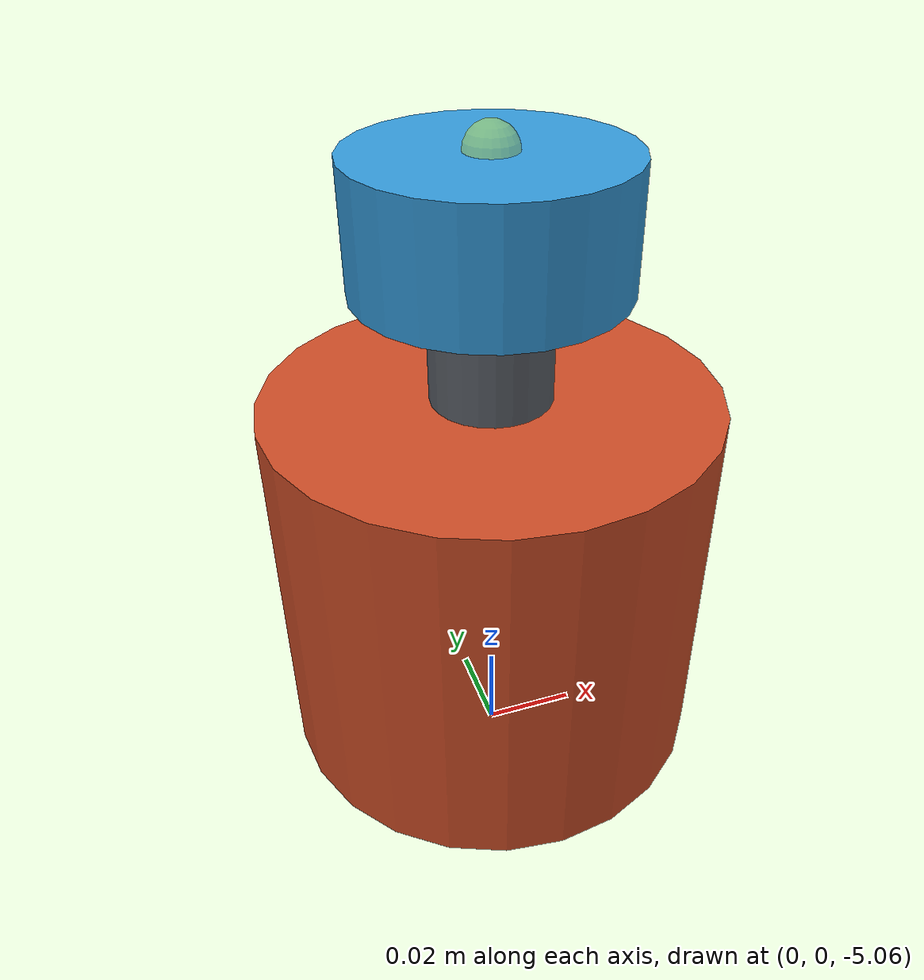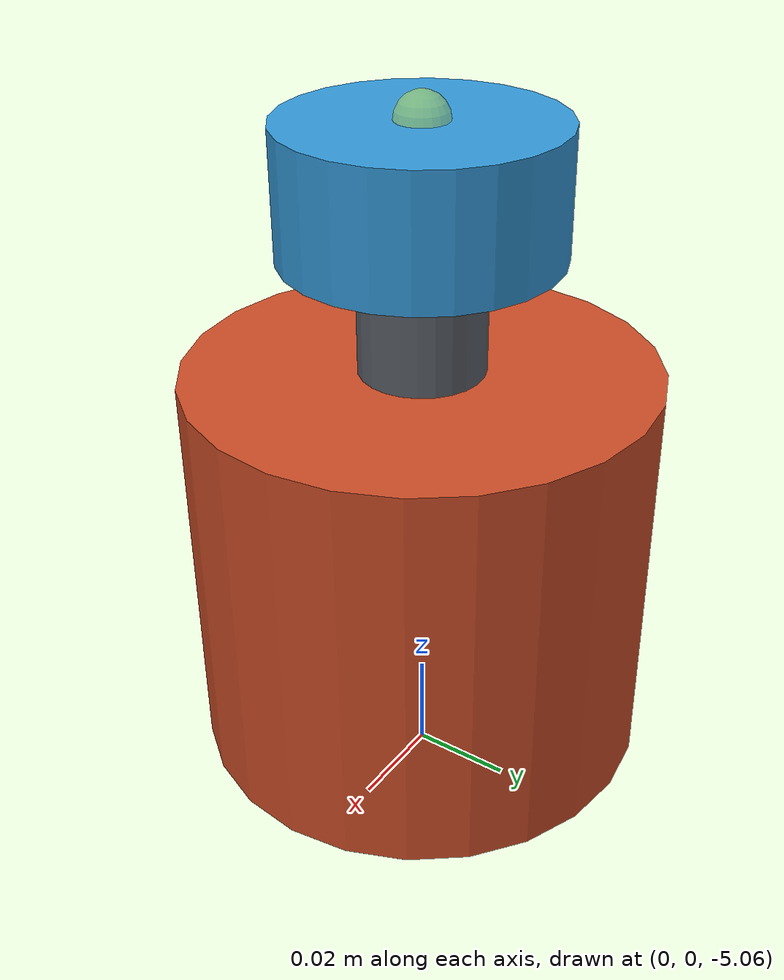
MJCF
<mujoco model="botones_sueltos">

  <default>
    <default class="libre_hub">
      <geom type="cylinder" rgba="0.80 0.30 0.15 1" condim="3" friction="1 0.005 0.0001"/>
    </default>
    <default class="libre_stem">
      <geom type="cylinder" rgba="0.35 0.37 0.40 1" contype="0" conaffinity="0" group="1"/>
    </default>
    <default class="libre_head">
      <geom type="cylinder" rgba="0.20 0.60 0.85 1" condim="4" friction="2.0 0.02 0.001"/>
    </default>
    <default class="libre_joint">
      <joint type="slide" axis="0 0 -1" limited="true" range="0 0.018"
             stiffness="500" springref="0" damping="3" armature="0.001"
             solreflimit="0.002 1" solimplimit="0.99 0.999 0.001"/>
    </default>
  </default>

  <worldbody>
    <body name="libre_0" pos="0 0 -5">
      <geom name="libre_0_hub"  class="libre_hub"  size="0.045 0.040" pos="0 0 -0.010"/>
      <body name="libre_0_head_body">
        <joint name="libre_0_slide" class="libre_joint"/>
        <geom name="libre_0_stem" class="libre_stem" size="0.012 0.011" pos="0 0 0.041"/>
        <geom name="libre_0_head" class="libre_head" size="0.026 0.012" pos="0 0 0.064"/>
        <site name="libre_0_target" pos="0 0 0.076" size="0.005" rgba="1 1 0 0.35"/>
      </body>
    </body>

    <body name="libre_1" pos="0 0 -5">
      <geom name="libre_1_hub"  class="libre_hub"  size="0.045 0.040" pos="0 0 -0.010"/>
      <body name="libre_1_head_body">
        <joint name="libre_1_slide" class="libre_joint"/>
        <geom name="libre_1_stem" class="libre_stem" size="0.012 0.011" pos="0 0 0.041"/>
        <geom name="libre_1_head" class="libre_head" size="0.026 0.012" pos="0 0 0.064"/>
        <site name="libre_1_target" pos="0 0 0.076" size="0.005" rgba="1 1 0 0.35"/>
      </body>
    </body>

    <body name="libre_2" pos="0 0 -5">
      <geom name="libre_2_hub"  class="libre_hub"  size="0.045 0.040" pos="0 0 -0.010"/>
      <body name="libre_2_head_body">
        <joint name="libre_2_slide" class="libre_joint"/>
        <geom name="libre_2_stem" class="libre_stem" size="0.012 0.011" pos="0 0 0.041"/>
        <geom name="libre_2_head" class="libre_head" size="0.026 0.012" pos="0 0 0.064"/>
        <site name="libre_2_target" pos="0 0 0.076" size="0.005" rgba="1 1 0 0.35"/>
      </body>
    </body>

    <body name="libre_3" pos="0 0 -5">
      <geom name="libre_3_hub"  class="libre_hub"  size="0.045 0.040" pos="0 0 -0.010"/>
      <body name="libre_3_head_body">
        <joint name="libre_3_slide" class="libre_joint"/>
        <geom name="libre_3_stem" class="libre_stem" size="0.012 0.011" pos="0 0 0.041"/>
        <geom name="libre_3_head" class="libre_head" size="0.026 0.012" pos="0 0 0.064"/>
        <site name="libre_3_target" pos="0 0 0.076" size="0.005" rgba="1 1 0 0.35"/>
      </body>
    </body>

  </worldbody>

  <contact>
    <exclude body1="libre_0" body2="libre_0_head_body"/>
    <exclude body1="libre_1" body2="libre_1_head_body"/>
    <exclude body1="libre_2" body2="libre_2_head_body"/>
    <exclude body1="libre_3" body2="libre_3_head_body"/>
  </contact>

  <sensor>
    <jointpos name="libre_0_pos" joint="libre_0_slide"/>
    <jointpos name="libre_1_pos" joint="libre_1_slide"/>
    <jointpos name="libre_2_pos" joint="libre_2_slide"/>
    <jointpos name="libre_3_pos" joint="libre_3_slide"/>
  </sensor>
</mujoco>
